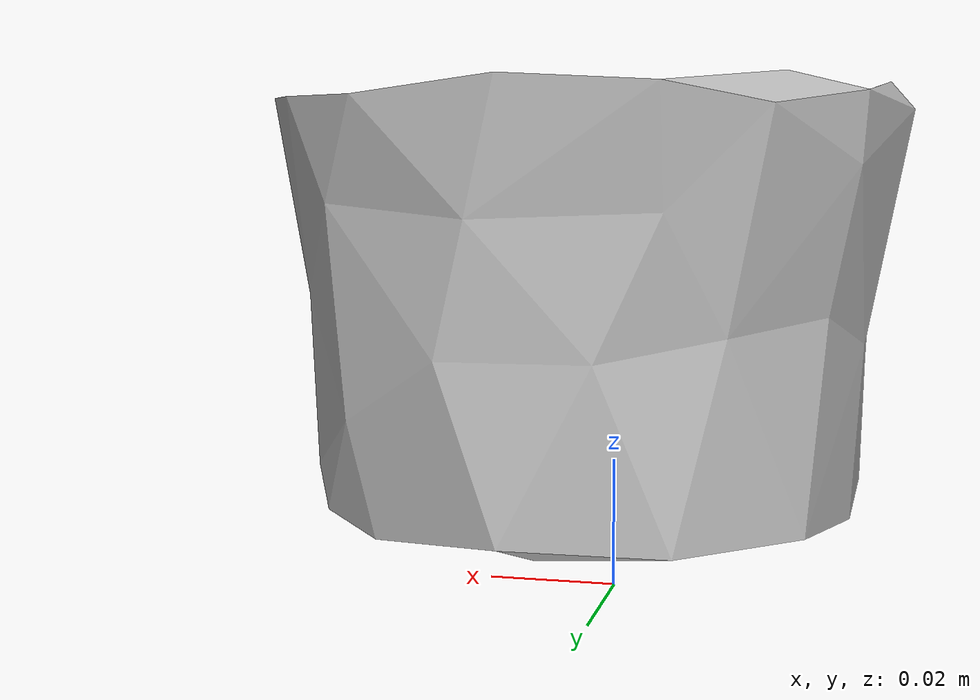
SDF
<?xml version='1.0'?>
<sdf version="1.4">
  <model name="065-i_cups">
    <static>false</static>
    <link name="link">
      <inertial>
        <pose>0.004217755687042375 -0.005422691509026493 0.045473662823422356 0.42337007355568784 -1.5212485512392804 -0.8493277974782939</pose>
        <mass>0.040749182651079914</mass>
        <inertia>
          <ixx>4.0515479557812874e-05</ixx>
          <ixy>-6.890016241907655e-21</ixy>
          <ixz>-4.29816790040485e-21</ixz>
          <iyy>3.470902922935934e-05</iyy>
          <iyz>-1.8622630850741307e-21</iyz>
          <izz>3.430027699489002e-05</izz>
        </inertia>
      </inertial>
      <collision name="collision">
        <geometry>
          <mesh>
            <!-- Use a downsampled mesh for collisions -->
            <uri>model:///065-i_cups/065-i_cups_250_collision.stl</uri>
	        </mesh>
        </geometry>
        <surface>
      </surface>
      </collision>
      <visual name="visual">
        <geometry>
          <mesh>
            <uri>model:///065-i_cups/textured.obj</uri>
	        </mesh>
        </geometry>
        <material>
          <script>
            <uri>model:///065-i_cups/065-i_cups.material</uri>
            <name>065-i_cups</name>
          </script>
        </material>
      </visual>
    </link>
  </model>
</sdf>
